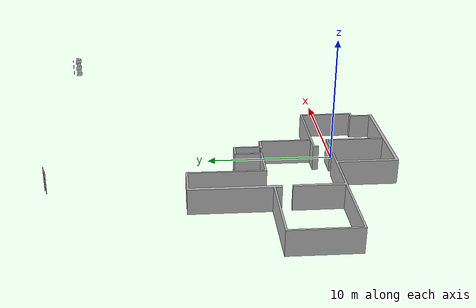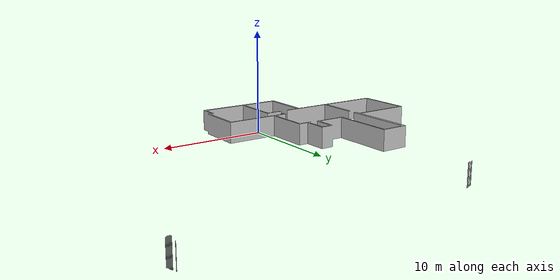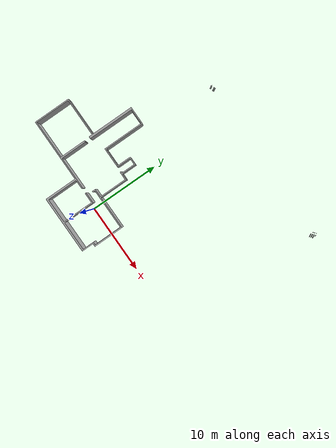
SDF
<?xml version="1.0"?>
<sdf version="1.6">
  <model name="rosebv/walls">
    <link name="1_link">
      <collision name="1_col">
        <geometry>
          <mesh>
            <uri>model://rosebv/walls/shape/rosebv.stl</uri>
          </mesh>
        </geometry>
      </collision>
      <visual name="1_vis">
        <geometry>
          <mesh>
            <uri>model://rosebv/walls/shape/rosebv.stl</uri>
          </mesh>
        </geometry>
      </visual>
      <pose>0 0 0 0 0 0</pose>
    </link>
    <static>true</static>
  </model>
</sdf>
